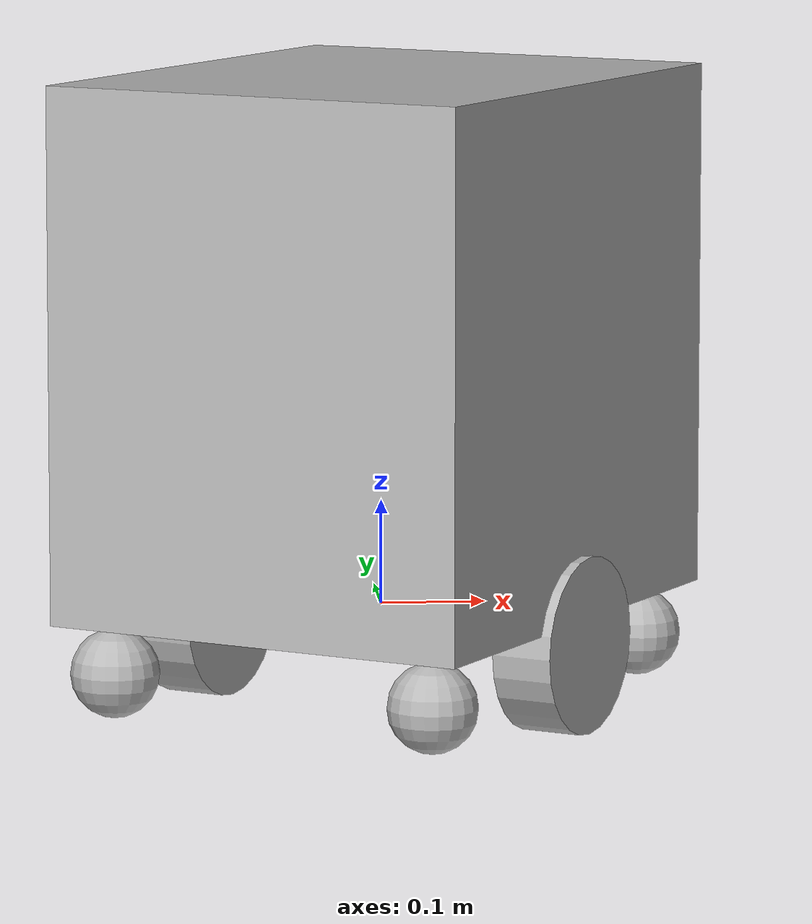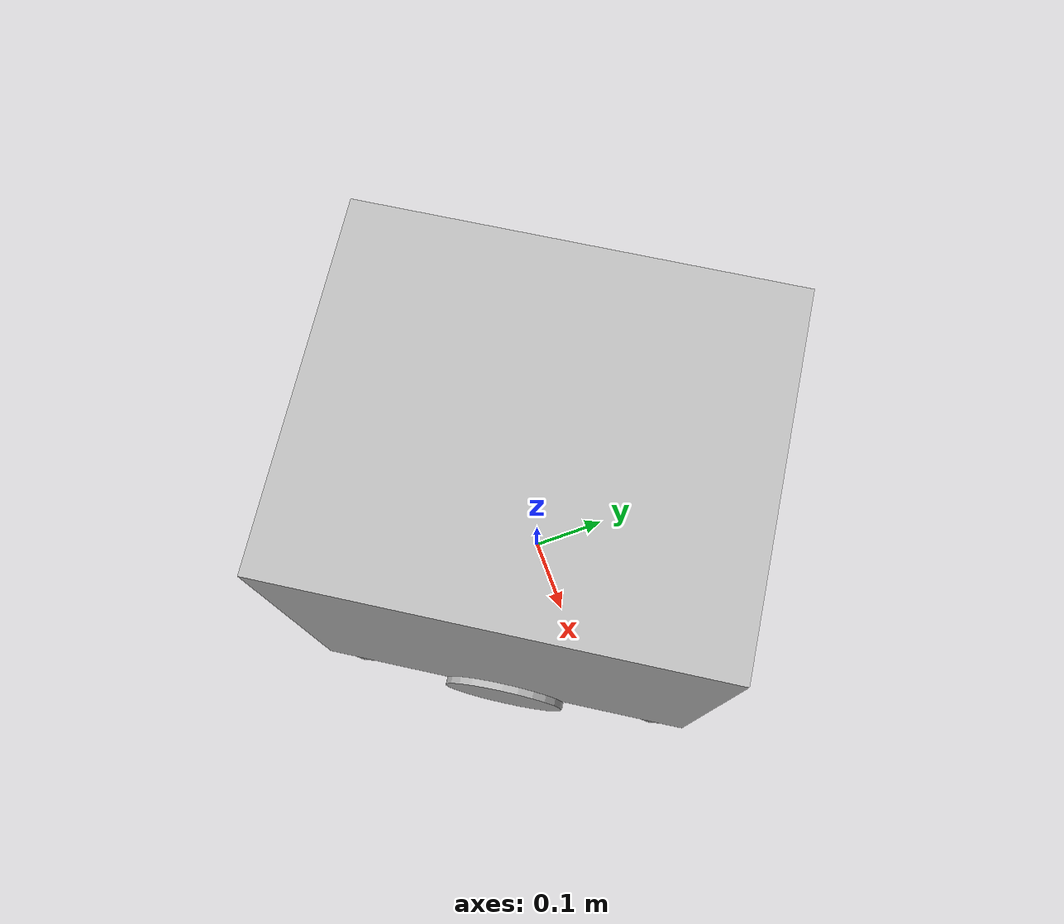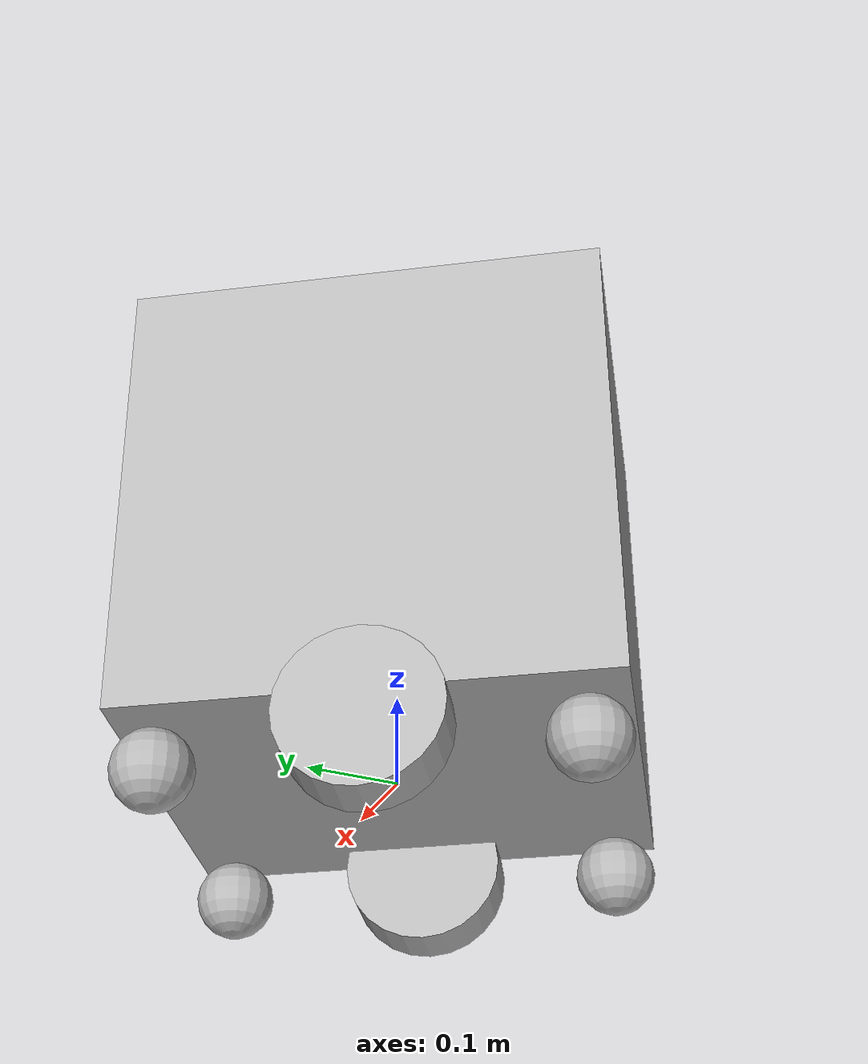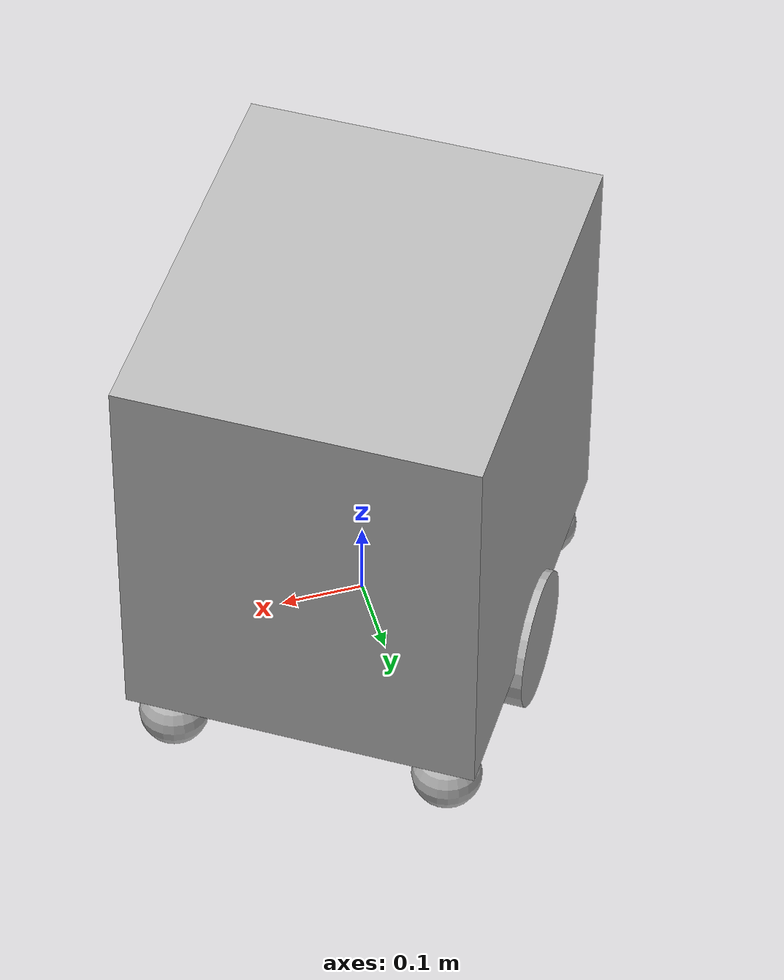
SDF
<sdf version='1.7'>
  <model name='diffdrive_robot'>
    <link name='dummy'>
      <inertial>
        <pose>0 0 -0.000421 0 -0 0</pose>
        <mass>45.4</mass>
        <inertia>
          <ixx>1.8895</ixx>
          <ixy>-0.131167</ixy>
          <ixz>0</ixz>
          <iyy>1.76944</iyy>
          <iyz>0</iyz>
          <izz>1.70237</izz>
        </inertia>
      </inertial>
      <collision name='dummy_fixed_joint_lump__base_link_collision'>
        <pose>0 0 0 0 -0 1</pose>
        <geometry>
          <box>
            <size>0.51 0.43 0.51</size>
          </box>
        </geometry>
      </collision>
      <collision name='dummy_fixed_joint_lump__caster_left_frontal_wheel_collision_1'>
        <pose>-0.028236 0.270664 -0.047813 0 -0 1</pose>
        <geometry>
          <sphere>
            <radius>0.0425</radius>
          </sphere>
        </geometry>
      </collision>
      <collision name='dummy_fixed_joint_lump__caster_left_rear_wheel_collision_2'>
        <pose>-0.257864 -0.086961 -0.047813 0 -0 1</pose>
        <geometry>
          <sphere>
            <radius>0.0425</radius>
          </sphere>
        </geometry>
      </collision>
      <collision name='dummy_fixed_joint_lump__caster_right_frontal_wheel_collision_3'>
        <pose>0.257864 0.086961 -0.047813 0 -0 1</pose>
        <geometry>
          <sphere>
            <radius>0.0425</radius>
          </sphere>
        </geometry>
      </collision>
      <collision name='dummy_fixed_joint_lump__caster_right_rear_wheel_collision_4'>
        <pose>0.028236 -0.270664 -0.047813 0 -0 1</pose>
        <geometry>
          <sphere>
            <radius>0.0425</radius>
          </sphere>
        </geometry>
      </collision>
      <visual name='dummy_fixed_joint_lump__base_link_visual'>
        <pose>0 0 0.255 0 -0 1</pose>
        <geometry>
          <box>
            <size>0.51 0.43 0.51</size>
          </box>
        </geometry>
      </visual>
      <visual name='dummy_fixed_joint_lump__caster_left_frontal_wheel_visual_1'>
        <pose>-0.028236 0.270664 -0.047813 0 -0 1</pose>
        <geometry>
          <sphere>
            <radius>0.0425</radius>
          </sphere>
        </geometry>
      </visual>
      <visual name='dummy_fixed_joint_lump__caster_left_rear_wheel_visual_2'>
        <pose>-0.257864 -0.086961 -0.047813 0 -0 1</pose>
        <geometry>
          <sphere>
            <radius>0.0425</radius>
          </sphere>
        </geometry>
      </visual>
      <visual name='dummy_fixed_joint_lump__caster_right_frontal_wheel_visual_3'>
        <pose>0.257864 0.086961 -0.047813 0 -0 1</pose>
        <geometry>
          <sphere>
            <radius>0.0425</radius>
          </sphere>
        </geometry>
      </visual>
      <visual name='dummy_fixed_joint_lump__caster_right_rear_wheel_visual_4'>
        <pose>0.028236 -0.270664 -0.047813 0 -0 1</pose>
        <geometry>
          <sphere>
            <radius>0.0425</radius>
          </sphere>
        </geometry>
      </visual>
    </link>
    <joint name='left_wheel_joint' type='revolute'>
      <pose relative_to='dummy'>0.164087 -0.105359 -0.02125 0 -0 1</pose>
      <parent>dummy</parent>
      <child>left_wheel</child>
      <axis>
        <xyz>0 1 0</xyz>
        <limit>
          <lower>-1e+16</lower>
          <upper>1e+16</upper>
        </limit>
        <dynamics>
          <damping>0.2</damping>
          <friction>0</friction>
          <spring_reference>0</spring_reference>
          <spring_stiffness>0</spring_stiffness>
        </dynamics>
      </axis>
    </joint>
    <link name='left_wheel'>
      <pose relative_to='left_wheel_joint'>0 0 0 0 -0 0</pose>
      <inertial>
        <pose>0 0 0 1.5708 -0 0</pose>
        <mass>3</mass>
        <inertia>
          <ixx>0.055</ixx>
          <ixy>0</ixy>
          <ixz>0</ixz>
          <iyy>0.055</iyy>
          <iyz>0</iyz>
          <izz>0.108</izz>
        </inertia>
      </inertial>
      <collision name='left_wheel_collision'>
        <pose>0 0 0 1.5708 -0 0</pose>
        <geometry>
          <cylinder>
            <length>0.06</length>
            <radius>0.085</radius>
          </cylinder>
        </geometry>
      </collision>
      <visual name='left_wheel_visual'>
        <pose>0 0 0 1.5708 -0 0</pose>
        <geometry>
          <cylinder>
            <length>0.06</length>
            <radius>0.085</radius>
          </cylinder>
        </geometry>
      </visual>
    </link>
    <joint name='right_wheel_joint' type='revolute'>
      <pose relative_to='dummy'>-0.164087 0.105359 -0.02125 0 -0 1</pose>
      <parent>dummy</parent>
      <child>right_wheel</child>
      <axis>
        <xyz>0 1 0</xyz>
        <limit>
          <lower>-1e+16</lower>
          <upper>1e+16</upper>
        </limit>
        <dynamics>
          <damping>0.2</damping>
          <friction>0</friction>
          <spring_reference>0</spring_reference>
          <spring_stiffness>0</spring_stiffness>
        </dynamics>
      </axis>
    </joint>
    <link name='right_wheel'>
      <pose relative_to='right_wheel_joint'>0 0 0 0 -0 0</pose>
      <inertial>
        <pose>0 0 0 1.5708 -0 0</pose>
        <mass>3</mass>
        <inertia>
          <ixx>0.055</ixx>
          <ixy>0</ixy>
          <ixz>0</ixz>
          <iyy>0.055</iyy>
          <iyz>0</iyz>
          <izz>0.108</izz>
        </inertia>
      </inertial>
      <collision name='right_wheel_collision'>
        <pose>0 0 0 1.5708 -0 0</pose>
        <geometry>
          <cylinder>
            <length>0.06</length>
            <radius>0.085</radius>
          </cylinder>
        </geometry>
      </collision>
      <visual name='right_wheel_visual'>
        <pose>0 0 0 1.5708 -0 0</pose>
        <geometry>
          <cylinder>
            <length>0.06</length>
            <radius>0.085</radius>
          </cylinder>
        </geometry>
      </visual>
    </link>
    <static>0</static>
    <plugin name='basic_mobile_bot_diff_drive' filename='libgazebo_ros_diff_drive.so'>
      <update_rate>30</update_rate>
      <left_joint>left_wheel_joint</left_joint>
      <right_joint>right_wheel_joint</right_joint>
      <wheel_separation>0.52</wheel_separation>
      <wheel_diameter>0.17</wheel_diameter>
      <max_wheel_torque>20</max_wheel_torque>
      <max_wheel_acceleration>1.0</max_wheel_acceleration>
      <command_topic>cmd_vel</command_topic>
      <publish_odom>1</publish_odom>
      <publish_odom_tf>0</publish_odom_tf>
      <publish_wheel_tf>0</publish_wheel_tf>
      <odometry_topic>odom</odometry_topic>
      <odometry_frame>odom</odometry_frame>
      <robot_base_frame>base_footprint</robot_base_frame>
      <odometry_source>1</odometry_source>
      <ros>
        <remapping>odom:=wheel/odometry</remapping>
      </ros>
    </plugin>
    <plugin name='basic_mobile_bot_joint_state' filename='libgazebo_ros_joint_state_publisher.so'>
      <ros>
        <remapping>~/out:=joint_states</remapping>
      </ros>
      <update_rate>30</update_rate>
      <joint_name>left_wheel_joint</joint_name>
      <joint_name>right_wheel_joint</joint_name>
    </plugin>
  </model>
</sdf>
